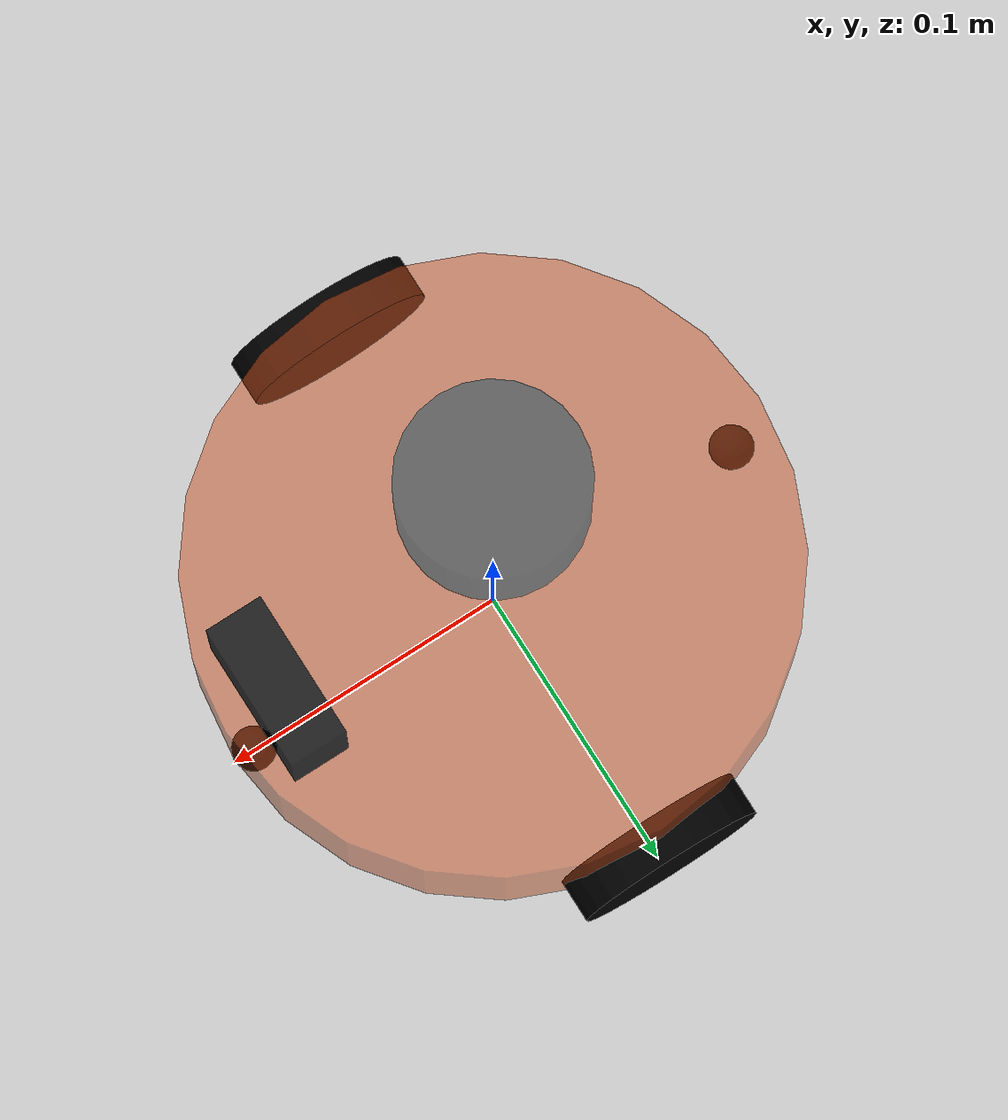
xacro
<robot name="mycar" xmlns:xacro="http://wiki.ros.org/xacro">
    <!-- 包含惯性矩阵文件 -->
    <xacro:include filename="head.xacro" />
    <!-- 包含底盘 摄像头与雷达的 xacro 文件 -->
    <xacro:include filename="demo5_car_base.urdf.xacro" />
    <xacro:include filename="demo6_car_camera.urdf.xacro" />
    <xacro:include filename="demo7_car_laser.urdf.xacro" />
</robot>

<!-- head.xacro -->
<robot name="base" xmlns:xacro="http://wiki.ros.org/xacro">
    <!-- Macro for inertia matrix -->
    <xacro:macro name="sphere_inertial_matrix" params="m r">
        <inertial>
            <mass value="${m}" />
            <inertia ixx="${2*m*r*r/5}" ixy="0" ixz="0"
                iyy="${2*m*r*r/5}" iyz="0"
                izz="${2*m*r*r/5}" />
        </inertial>
    </xacro:macro>

    <xacro:macro name="cylinder_inertial_matrix" params="m r h">
        <inertial>
            <mass value="${m}" />
            <inertia ixx="${m*(3*r*r+h*h)/12}" ixy = "0" ixz = "0"
                iyy="${m*(3*r*r+h*h)/12}" iyz = "0"
                izz="${m*r*r/2}" />
        </inertial>
    </xacro:macro>

    <xacro:macro name="Box_inertial_matrix" params="m l w h">
       <inertial>
               <mass value="${m}" />
               <inertia ixx="${m*(h*h + l*l)/12}" ixy = "0" ixz = "0"
                   iyy="${m*(w*w + l*l)/12}" iyz= "0"
                   izz="${m*(w*w + h*h)/12}" />
       </inertial>
   </xacro:macro>
</robot>

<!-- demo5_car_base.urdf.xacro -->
<robot name="mycar" xmlns:xacro="http://wiki.ros.org/xacro">
    <!-- 设置 base_footprint  -->
    <xacro:property name="footprint_radius" value="0.001" />
    <link name="base_footprint">
        <visual>
            <geometry>
                <sphere radius="${footprint_radius}" />
            </geometry>
        </visual>
    </link>

    <!-- 添加底盘 -->
    <xacro:property name="base_radius" value="0.1" />
    <xacro:property name="base_length" value="0.08" />
    <xacro:property name="base_mass" value="2" />
    <xacro:property name="lidi" value="0.015" />
    <xacro:property name="base_joint_z" value="${base_length / 2 + lidi}" />
    <link name="base_link">
       <visual>
           <geometry>
               <cylinder radius="0.1" length="0.08" />
           </geometry>
           <origin xyz="0 0 0" rpy="0 0 0" />
           <material name="baselink_color">
               <color rgba="0.8 0.3 0.1 0.5" />
           </material>
       </visual>
            <collision>
                <geometry>
                    <cylinder radius="0.1" length="0.08" />
                </geometry>
                <origin xyz="0 0 0" rpy="0 0 0" />
            </collision>
            <!-- 调用惯性矩阵函数 -->
            <xacro:cylinder_inertial_matrix m="${base_mass}" r="${base_radius}" h="${base_length}" />
    </link>
    <gazebo reference="base_link">
        <material>Gazebo/Yellow</material>
    </gazebo>

    <joint name="base_link_to_base_footprint" type="fixed">
        <parent link="base_footprint" />
        <child link="base_link"/>
        <origin xyz="0 0 0.055" />
    </joint>
    <!-- 添加驱动轮 -->
    <!-- 属性 -->
    <xacro:property name="wheel_radius" value="0.0325" />
    <xacro:property name="wheel_length" value="0.015" />
    <xacro:property name="wheel_mass" value="0.05" />
    <xacro:property name="PI" value="3.1415927" />
    <!-- 注意 结果是负数 -->
    <xacro:property name="wheel_joint_z" value="${(base_length / 2 + lidi - wheel_radius) * -1}" />

    <xacro:macro name="wheel_func" params="wheel_name flag">

        <link name="${wheel_name}_wheel">
            <visual>
                <geometry>
                    <cylinder radius="${wheel_radius}" length="${wheel_length}" />
                </geometry>
                <origin xyz="0 0 0" rpy="${PI / 2} 0 0" />
                <material name="black">
                    <color rgba="0.0 0.0 0.0 1.0" />
                </material>
            </visual>
            <collision>
                <geometry>
                    <cylinder radius="${wheel_radius}" length="${wheel_length}" />
                </geometry>
                <origin xyz="0 0 0" rpy="${PI / 2} 0 0" />
            </collision>
            <xacro:cylinder_inertial_matrix m="${wheel_mass}" r="${wheel_radius}" h="${wheel_length}" />
        </link>
        <gazebo reference="${wheel_name}_wheel">
            <material>Gazebo/Red</material>
        </gazebo>

        <joint name="${wheel_name}_wheel2base_link" type="continuous">
            <parent link="base_link" />
            <child link="${wheel_name}_wheel" />
            <origin xyz="0 ${0.1 * flag} ${wheel_joint_z}" />
            <axis xyz="0 1 0" />
        </joint>
    </xacro:macro>

    <xacro:wheel_func wheel_name="left" flag="1" />
    <xacro:wheel_func wheel_name="right" flag="-1" />
    <!-- 添加万向轮(支撑轮) -->
    <xacro:property name="small_wheel_radius" value="0.0075" />
    <xacro:property name="small_wheel_mass" value="0.01" />
    <xacro:property name="small_joint_z" value="${(base_length / 2 + lidi - small_wheel_radius) * -1}" />

    <xacro:macro name="small_wheel_func" params="small_wheel_name flag">
        <link name="${small_wheel_name}_wheel">
            <visual>
                <geometry>
                    <sphere radius="${small_wheel_radius}" />
                </geometry>
                <origin xyz="0 0 0" rpy="0 0 0" />
                <material name="black">
                    <color rgba="0.0 0.0 0.0 1.0" />
                </material>
            </visual>
            <collision>
                <geometry>
                    <sphere radius="${small_wheel_radius}" />
                </geometry>
                <origin xyz="0 0 0" rpy="0 0 0" />
            </collision>
            <xacro:sphere_inertial_matrix m="${small_wheel_mass}" r="${small_wheel_radius}" />
        </link>
        <gazebo reference="${small_wheel_name}_wheel">
            <material>Gazebo/Red</material>
        </gazebo>

        <joint name="${small_wheel_name}_wheel2base_link" type="continuous">
            <parent link="base_link" />
            <child link="${small_wheel_name}_wheel" />
            <origin xyz="${0.0925 * flag} 0 ${small_joint_z}" />
            <axis xyz="1 1 1" />
        </joint>
    </xacro:macro>
    <xacro:small_wheel_func small_wheel_name="front" flag="1" />
    <xacro:small_wheel_func small_wheel_name="back" flag="-1" />
</robot>

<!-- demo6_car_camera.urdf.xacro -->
<robot name="mycar" xmlns:xacro="http://wiki.ros.org/xacro">
    <!-- 摄像头部件 -->
    <!-- 参数 -->
    <!--
        参数
            连杆属性 厚度 宽度 高度
            关节属性 x y z
     -->
    <xacro:property name="camera_length" value="0.02" /> <!-- 厚度 x -->
    <xacro:property name="camera_width" value="0.05" /> <!-- 宽度 y -->
    <xacro:property name="camera_height" value="0.05" /> <!-- 高度 z -->
    <xacro:property name="camera_mass" value="0.01" />
    <xacro:property name="joint_camera_x" value="0.08" />
    <xacro:property name="joint_camera_y" value="0" />
    <xacro:property name="joint_camera_z" value="${base_length / 2 + camera_height / 2}" />

    <!-- 设计连杆和关节 -->
    <link name="camera">
        <visual>
            <geometry>
                <box size="${camera_length} ${camera_width} ${camera_height}" />
            </geometry>

            <material name="black">
                <color rgba="0 0 0 0.8" />
            </material>
        </visual>
        <collision>
            <geometry>
                <box size="${camera_length} ${camera_width} ${camera_height}" />
            </geometry>
        </collision>
        <xacro:Box_inertial_matrix m="${camera_mass}" l="${camera_length}" w="${camera_width}" h="${camera_height}" />
    </link>
    <gazebo reference="camera">
        <material>Gazebo/Black</material>
    </gazebo>

    <joint name="camera_to_base" type="fixed">
        <parent link="base_link"/>
        <child link="camera" />
        <origin xyz="${joint_camera_x} ${joint_camera_y} ${joint_camera_z}" rpy="0 0 0" />
    </joint>
</robot>

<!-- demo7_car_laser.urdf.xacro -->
<robot name="mycar" xmlns:xacro="http://wiki.ros.org/xacro">
    <!-- 雷达部件 -->
    <!-- 参数 -->
    <!--
        支架
            支架尺寸 半径 高度
            关节偏移量 x y z

        雷达
            雷达尺寸 半径 高度
            关节偏移量 x y z
     -->
    <xacro:property name="support_radius" value="0.01" />
    <xacro:property name="support_length" value="0.15" />
    <xacro:property name="support_mass" value="0.1" />

    <xacro:property name="laser_radius" value="0.03" />
    <xacro:property name="laser_length" value="0.05" />
    <xacro:property name="laser_mass" value="0.15" />

    <xacro:property name="joint_support_x" value="0" />
    <xacro:property name="joint_support_y" value="0" />
    <xacro:property name="joint_support_z" value="${base_length / 2 + support_length / 2}" />

    <xacro:property name="joint_laser_x" value="0" />
    <xacro:property name="joint_laser_y" value="0" />
    <xacro:property name="joint_laser_z" value="${support_length / 2 + laser_length / 2}" />

    <!-- 支架 -->
    <link name="support">
        <visual>
            <geometry>
                <cylinder radius="${support_radius}" length="${support_length}" />
            </geometry>
            <material name="yellow">
                <color rgba="0.8 0.5 0 0.5" />
            </material>
        </visual>
        <collision>
            <geometry>
                <cylinder radius="${support_radius}" length="${support_length}" />
            </geometry>
        </collision>
        <xacro:cylinder_inertial_matrix m="${support_mass}" r="${support_radius}" h="${support_length}" />
    </link>
    <gazebo reference="support">
        <material>Gazebo/Blue</material>
    </gazebo>

    <joint name="support_to_base" type="fixed">
        <parent link="base_link" />
        <child link="support" />
        <origin xyz="${joint_support_x} ${joint_support_y} ${joint_support_z}" rpy="0 0 0" />
    </joint>
    <!-- 雷达 -->
    <link name="laser">
        <visual>
            <geometry>
                <cylinder radius="${laser_radius}" length="${laser_length}" />
            </geometry>
            <material name="black">
                <color rgba="0 0 0 0.5" />
            </material>
        </visual>
        <collision>
            <geometry>
                <cylinder radius="${laser_radius}" length="${laser_length}" />
            </geometry>
        </collision>
        <xacro:cylinder_inertial_matrix m="${laser_mass}" r="${laser_radius}" h="${laser_length}" />
    </link>
    <gazebo reference="laser">
        <material>Gazebo/Green</material>
    </gazebo>

    <joint name="laser_to_support" type="fixed">
        <parent link="support" />
        <child link="laser" />
        <origin xyz="${joint_laser_x} ${joint_laser_y} ${joint_laser_z}" rpy="0 0 0" />
    </joint>

</robot>
